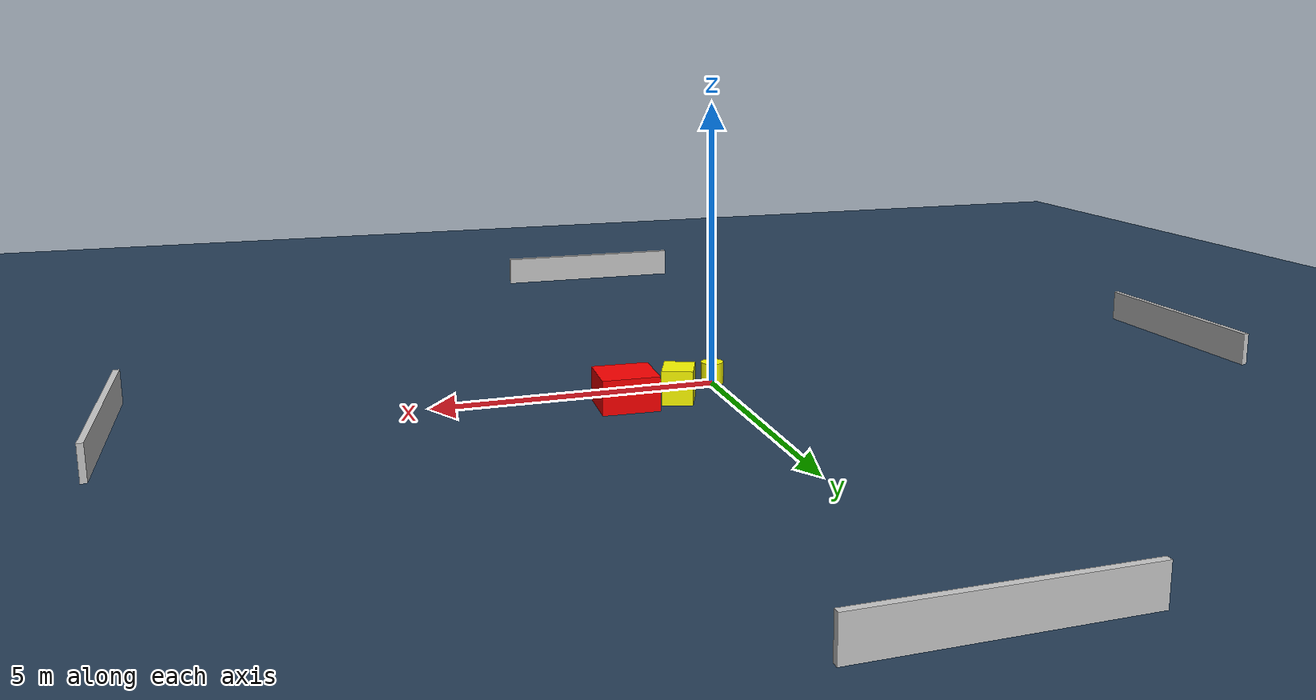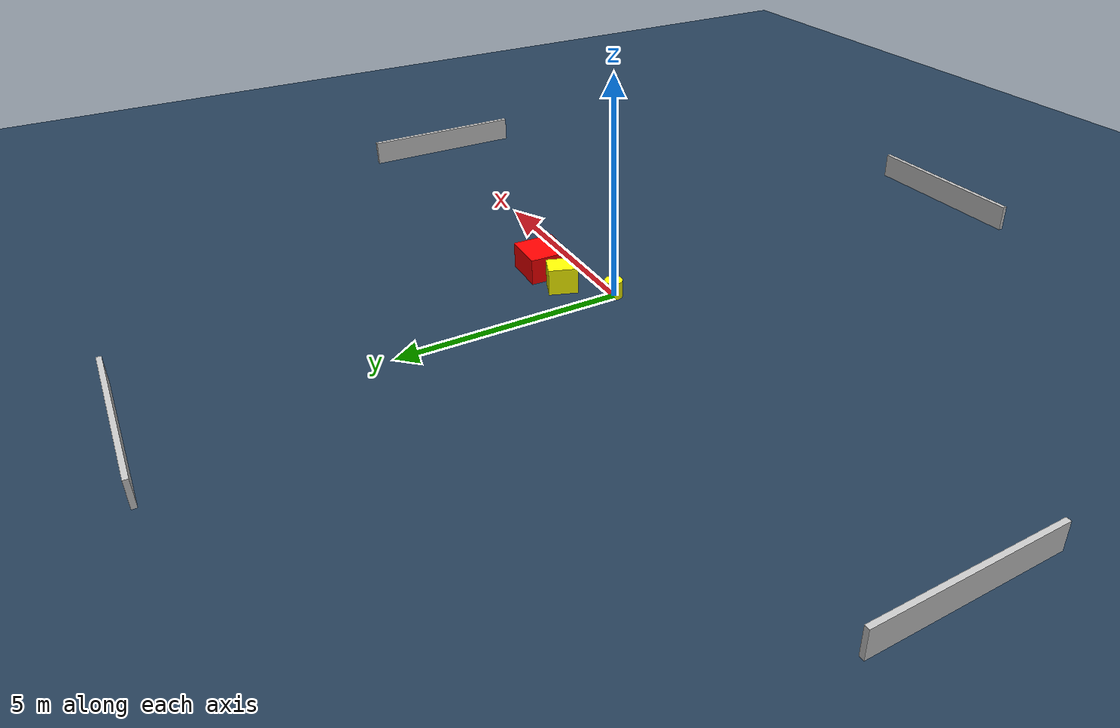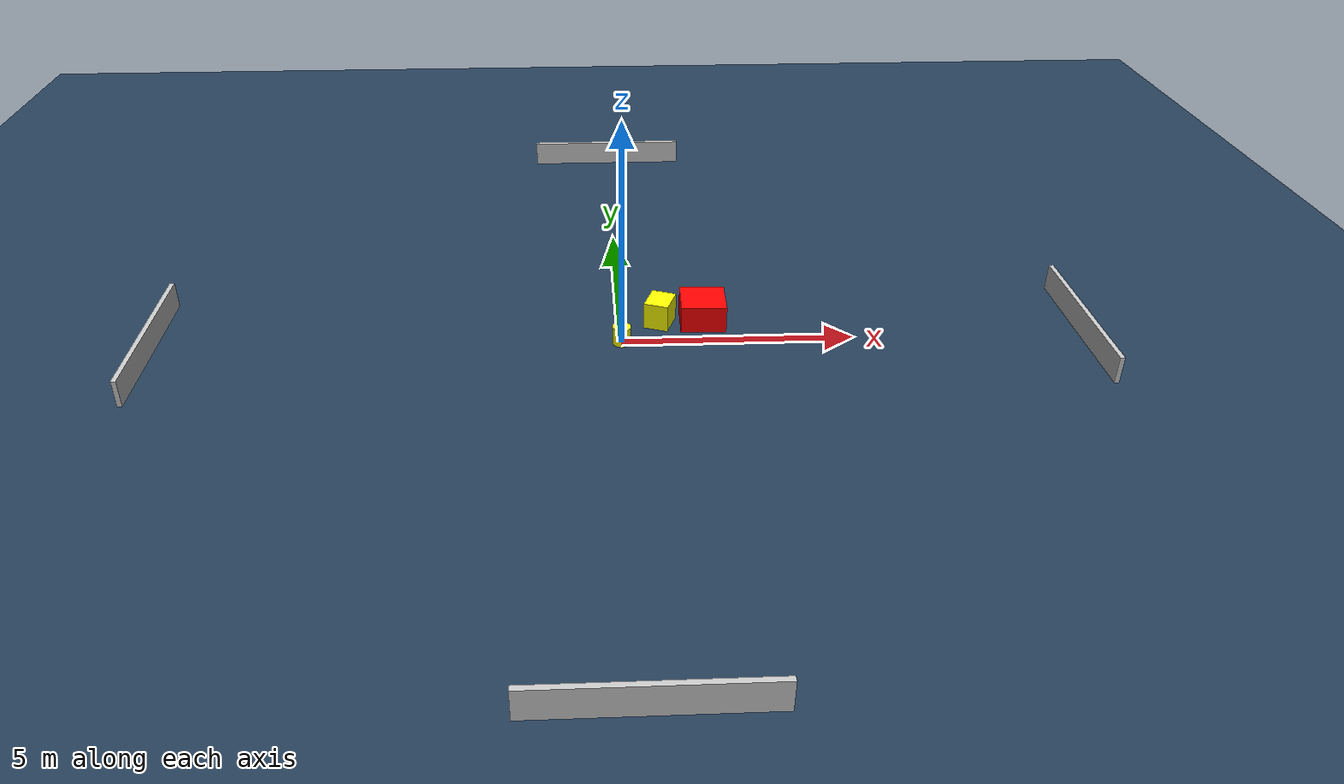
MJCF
<?xml version="1.0" ?>
<mujoco model="generated_environment">
  <option timestep="0.01" integrator="RK4" cone="elliptic"/>
  <default>
    <geom density="1"/>
  </default>
  <asset>
    <texture builtin="gradient" height="3072" name="skybox" rgb1="0.3 0.5 0.7" rgb2="0 0 0" type="skybox" width="512"/>
    <texture builtin="checker" height="300" name="groundplane" rgb1="0.2 0.3 0.4" rgb2="0.1 0.2 0.3" type="2d" width="300"/>
    <material name="groundplane" reflectance="0.2" texrepeat="5 5" texture="groundplane"/>
  </asset>
  <worldbody>
    <light dir="0 0 -1" directional="true" pos="0 0 1.5"/>
    <geom condim="3" friction="0.5 0.005 0.001" material="groundplane" name="floor" pos="0 0 0" size="0 0 0.05" type="plane"/>
    <body name="walls">
      <geom name="wall_1" condim="4" pos="-10.0 0.0 0.3" rgba="0.800000011920929 0.800000011920929 0.800000011920929 1.0" size="0.05 2.0 0.3" type="box"/>
      <geom name="wall_2" condim="4" pos="10.0 0.0 0.3" rgba="0.800000011920929 0.800000011920929 0.800000011920929 1.0" size="0.05 2.0 0.3" type="box"/>
      <geom name="wall_3" condim="4" pos="0.0 -10.0 0.3" rgba="0.800000011920929 0.800000011920929 0.800000011920929 1.0" size="2.0 0.05 0.3" type="box"/>
      <geom name="wall_4" condim="4" pos="0.0 10.0 0.3" rgba="0.800000011920929 0.800000011920929 0.800000011920929 1.0" size="2.0 0.05 0.3" type="box"/>
    </body>
    <body name="robot">
      <joint name="joint_x" type="slide" pos="0 0 0" axis="1 0 0"/>
      <joint name="joint_y" type="slide" pos="0 0 0" axis="0 1 0"/>
      <geom name="robot" type="cylinder" pos="0.0 0.0 0.2" size="0.2 0.2 0.0" mass="5.0" friction="1.0 0.005 0.0001" condim="4" rgba="1.0 1.0 0.0 1.0"/>
    </body>
    <body name="obstacle_1_movable">
      <geom name="obstacle_1_movable" condim="4" pos="0.8757596932460687 0.8116510000752255 0.3" euler="0 0 339.382830030134" friction="0.0 0.005 0.001" rgba="1.0 1.0 0.0 1.0" size="0.27009819745228475 0.32485991100839445 0.3" type="box" mass="0.1"/>
      <joint type="free"/>
    </body>
    <body name="obstacle_2_static">
      <geom name="obstacle_2_static" condim="4" pos="1.8174480281426306 0.8312235115849349 0.3" euler="0 0 357.91322435685447" friction="0.0 0.005 0.001" rgba="1.0 0.0 0.0 1.0" size="0.49387302089519014 0.47226032656174594 0.3" type="box"/>
    </body>
  </worldbody>
  <actuator>
    <motor name="actuator_x" joint="joint_x" gear="1" ctrlrange="-1 1"/>
    <motor name="actuator_y" joint="joint_y" gear="1" ctrlrange="-1 1"/>
  </actuator>
</mujoco>
